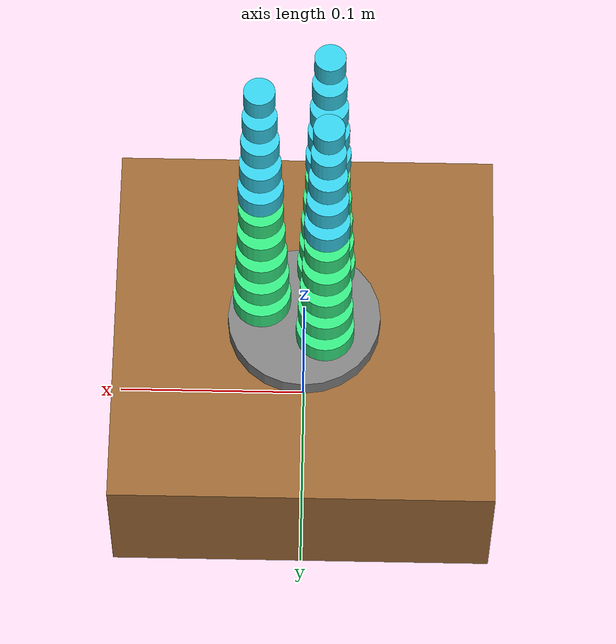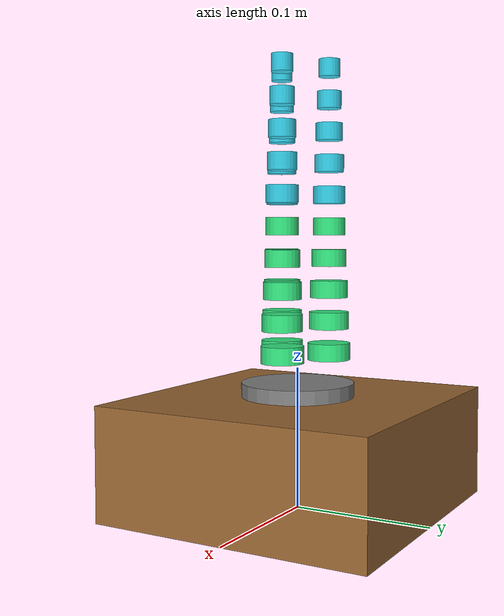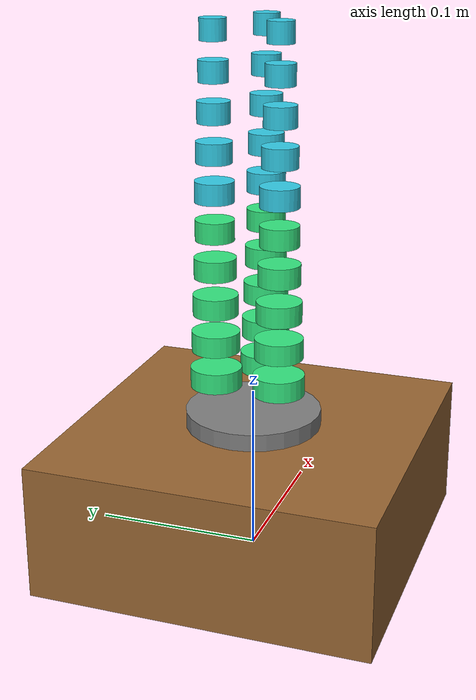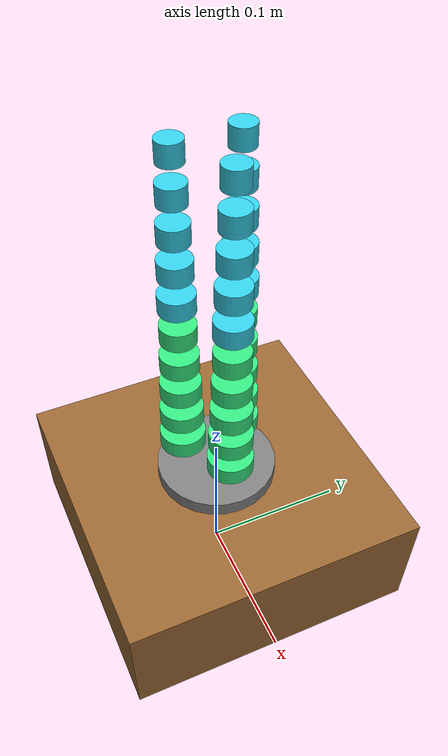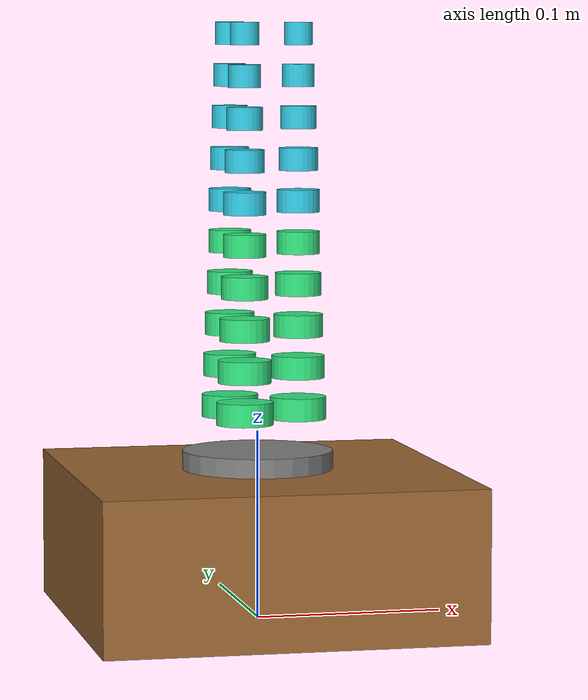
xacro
<?xml version="1.0"?>
<robot xmlns:xacro="http://www.ros.org/wiki/xacro" name="two_segment_gripper">

  <!-- Robot Dimensional Constants -->
  <xacro:property name="ground_offset" value="0.080"/>       <!-- 80mm - distance from ground to gripper base -->
  <xacro:property name="H" value="0.022"/>                   <!-- 22mm - equal H distance everywhere -->
  <xacro:property name="segment1_limit" value="0.2094"/>     <!-- ±12° for segment 1 -->
  <xacro:property name="segment2_limit" value="0.2094"/>     <!-- ±12° for segment 2 -->
  <xacro:property name="disc_height" value="0.012"/>         <!-- 12mm disc thickness -->

  <!-- Gripper Constants -->
  <xacro:property name="finger_base_radius" value="0.015"/>  <!-- 15mm radius = 30mm diameter at base -->
  <xacro:property name="finger_mid_radius" value="0.01125"/> <!-- 11.25mm radius at middle -->
  <xacro:property name="finger_tip_radius" value="0.0075"/>  <!-- 7.5mm radius = 15mm diameter at tip -->
  <xacro:property name="finger_offset" value="0.022"/>       <!-- 22mm from center -->

  <!-- Finger Segment Macro -->
  <xacro:macro name="finger_segment" params="finger_num segment_num parent_link is_actuated mimic_joint disc_radius_val color">

    <!-- Revolute Joint -->
    <joint name="finger${finger_num}_seg${segment_num}_joint" type="revolute">
      <parent link="${parent_link}"/>
      <child link="finger${finger_num}_seg${segment_num}_link"/>
      <origin xyz="0 0 0" rpy="0 0 0"/>
      <axis xyz="0 1 0"/>
      <!-- Segments 1-5 (level 1) use -1° to +12° -->
      <xacro:if value="${segment_num &lt;= 5}">
        <limit lower="-0.0175" upper="${segment1_limit}" effort="50" velocity="1.0"/>
      </xacro:if>
      <!-- Segments 6-10 (level 2) use -6° to +12° -->
      <xacro:if value="${segment_num &gt; 5}">
        <limit lower="-0.1047" upper="${segment2_limit}" effort="50" velocity="1.0"/>
      </xacro:if>
      <xacro:if value="${is_actuated}">
        <dynamics damping="0.5" friction="0.0"/>
      </xacro:if>
      <xacro:unless value="${is_actuated}">
        <mimic joint="${mimic_joint}" multiplier="1.0" offset="0.0"/>
        <dynamics damping="0.1" friction="0.0"/>
      </xacro:unless>
    </joint>

    <link name="finger${finger_num}_seg${segment_num}_link">
      <inertial>
        <origin xyz="0 0 0" rpy="0 0 0"/>
        <mass value="0.01"/>
        <inertia ixx="0.00001" ixy="0" ixz="0" iyy="0.00001" iyz="0" izz="0.00001"/>
      </inertial>
    </link>

    <!-- Fixed H distance to disc -->
    <joint name="finger${finger_num}_seg${segment_num}_fixed" type="fixed">
      <parent link="finger${finger_num}_seg${segment_num}_link"/>
      <child link="finger${finger_num}_seg${segment_num}_disc"/>
      <origin xyz="0 0 ${H}" rpy="0 0 0"/>
    </joint>

    <!-- Disc -->
    <link name="finger${finger_num}_seg${segment_num}_disc">
      <visual>
        <origin xyz="0 0 0" rpy="0 0 0"/>
        <geometry>
          <cylinder radius="${disc_radius_val}" length="${disc_height}"/>
        </geometry>
        <material name="finger_seg${segment_num}_mat">
          <color rgba="${color}"/>
        </material>
      </visual>
      <collision>
        <origin xyz="0 0 0" rpy="0 0 0"/>
        <geometry>
          <cylinder radius="${disc_radius_val}" length="${disc_height}"/>
        </geometry>
      </collision>
      <inertial>
        <origin xyz="0 0 0" rpy="0 0 0"/>
        <mass value="0.1"/>
        <inertia ixx="0.0001" ixy="0" ixz="0" iyy="0.0001" iyz="0" izz="0.0001"/>
      </inertial>
    </link>

  </xacro:macro>

  <!-- Base Link -->
  <link name="base_link">
    <visual>
      <origin xyz="0 0 ${ground_offset/2}" rpy="0 0 0"/>
      <geometry>
        <box size="0.2 0.2 ${ground_offset}"/>
      </geometry>
      <material name="brown">
        <color rgba="0.6 0.4 0.2 1.0"/>
      </material>
    </visual>
    <collision>
      <origin xyz="0 0 ${ground_offset/2}" rpy="0 0 0"/>
      <geometry>
        <box size="0.2 0.2 ${ground_offset}"/>
      </geometry>
    </collision>
    <inertial>
      <origin xyz="0 0 ${ground_offset/2}" rpy="0 0 0"/>
      <mass value="2.0"/>
      <inertia ixx="0.01" ixy="0" ixz="0" iyy="0.01" iyz="0" izz="0.01"/>
    </inertial>
  </link>

  <!-- Gripper Base -->
  <joint name="base_to_gripper" type="fixed">
    <parent link="base_link"/>
    <child link="gripper_base"/>
    <origin xyz="0 0 ${ground_offset}" rpy="0 0 0"/>
  </joint>

  <link name="gripper_base">
    <visual>
      <origin xyz="0 0 0.005" rpy="0 0 0"/>
      <geometry>
        <cylinder radius="0.04" length="0.01"/>
      </geometry>
      <material name="gray">
        <color rgba="0.5 0.5 0.5 1.0"/>
      </material>
    </visual>
    <inertial>
      <mass value="0.2"/>
      <inertia ixx="0.0001" ixy="0" ixz="0" iyy="0.0001" iyz="0" izz="0.0001"/>
    </inertial>
  </link>

  <!-- ===== FINGER 1 (at 0°) ===== -->
  <joint name="finger1_mount" type="fixed">
    <parent link="gripper_base"/>
    <child link="finger1_base"/>
    <origin xyz="${finger_offset} 0 0.01" rpy="0 0 0"/>
  </joint>
  <link name="finger1_base">
    <inertial>
      <mass value="0.01"/>
      <inertia ixx="0.00001" ixy="0" ixz="0" iyy="0.00001" iyz="0" izz="0.00001"/>
    </inertial>
  </link>

  <!-- Finger 1: Level 1 - 5 discs (all controlled by seg1_joint) GREEN -->
  <xacro:finger_segment finger_num="1" segment_num="1" parent_link="finger1_base" is_actuated="true" mimic_joint="" disc_radius_val="${finger_base_radius}" color="0.2 0.9 0.5 1.0"/>
  <xacro:finger_segment finger_num="1" segment_num="2" parent_link="finger1_seg1_disc" is_actuated="false" mimic_joint="finger1_seg1_joint" disc_radius_val="${finger_base_radius - 1*(finger_base_radius - finger_mid_radius)/4}" color="0.2 0.9 0.5 1.0"/>
  <xacro:finger_segment finger_num="1" segment_num="3" parent_link="finger1_seg2_disc" is_actuated="false" mimic_joint="finger1_seg1_joint" disc_radius_val="${finger_base_radius - 2*(finger_base_radius - finger_mid_radius)/4}" color="0.2 0.9 0.5 1.0"/>
  <xacro:finger_segment finger_num="1" segment_num="4" parent_link="finger1_seg3_disc" is_actuated="false" mimic_joint="finger1_seg1_joint" disc_radius_val="${finger_base_radius - 3*(finger_base_radius - finger_mid_radius)/4}" color="0.2 0.9 0.5 1.0"/>
  <xacro:finger_segment finger_num="1" segment_num="5" parent_link="finger1_seg4_disc" is_actuated="false" mimic_joint="finger1_seg1_joint" disc_radius_val="${finger_mid_radius}" color="0.2 0.9 0.5 1.0"/>

  <!-- Finger 1: Level 2 - 5 discs (all controlled by seg6_joint) CYAN -->
  <xacro:finger_segment finger_num="1" segment_num="6" parent_link="finger1_seg5_disc" is_actuated="true" mimic_joint="" disc_radius_val="${finger_mid_radius}" color="0.2 0.8 0.9 1.0"/>
  <xacro:finger_segment finger_num="1" segment_num="7" parent_link="finger1_seg6_disc" is_actuated="false" mimic_joint="finger1_seg6_joint" disc_radius_val="${finger_mid_radius - 1*(finger_mid_radius - finger_tip_radius)/4}" color="0.2 0.8 0.9 1.0"/>
  <xacro:finger_segment finger_num="1" segment_num="8" parent_link="finger1_seg7_disc" is_actuated="false" mimic_joint="finger1_seg6_joint" disc_radius_val="${finger_mid_radius - 2*(finger_mid_radius - finger_tip_radius)/4}" color="0.2 0.8 0.9 1.0"/>
  <xacro:finger_segment finger_num="1" segment_num="9" parent_link="finger1_seg8_disc" is_actuated="false" mimic_joint="finger1_seg6_joint" disc_radius_val="${finger_mid_radius - 3*(finger_mid_radius - finger_tip_radius)/4}" color="0.2 0.8 0.9 1.0"/>
  <xacro:finger_segment finger_num="1" segment_num="10" parent_link="finger1_seg9_disc" is_actuated="false" mimic_joint="finger1_seg6_joint" disc_radius_val="${finger_tip_radius}" color="0.2 0.8 0.9 1.0"/>

  <!-- ===== FINGER 2 (at 120°) ===== -->
  <joint name="finger2_mount" type="fixed">
    <parent link="gripper_base"/>
    <child link="finger2_base"/>
    <origin xyz="${finger_offset*cos(2.0944)} ${finger_offset*sin(2.0944)} 0.01" rpy="0 0 2.0944"/>
  </joint>
  <link name="finger2_base">
    <inertial>
      <mass value="0.01"/>
      <inertia ixx="0.00001" ixy="0" ixz="0" iyy="0.00001" iyz="0" izz="0.00001"/>
    </inertial>
  </link>

  <!-- Finger 2: Level 1 - 5 discs (mimic finger1 level 1) GREEN -->
  <xacro:finger_segment finger_num="2" segment_num="1" parent_link="finger2_base" is_actuated="false" mimic_joint="finger1_seg1_joint" disc_radius_val="${finger_base_radius}" color="0.2 0.9 0.5 1.0"/>
  <xacro:finger_segment finger_num="2" segment_num="2" parent_link="finger2_seg1_disc" is_actuated="false" mimic_joint="finger1_seg1_joint" disc_radius_val="${finger_base_radius - 1*(finger_base_radius - finger_mid_radius)/4}" color="0.2 0.9 0.5 1.0"/>
  <xacro:finger_segment finger_num="2" segment_num="3" parent_link="finger2_seg2_disc" is_actuated="false" mimic_joint="finger1_seg1_joint" disc_radius_val="${finger_base_radius - 2*(finger_base_radius - finger_mid_radius)/4}" color="0.2 0.9 0.5 1.0"/>
  <xacro:finger_segment finger_num="2" segment_num="4" parent_link="finger2_seg3_disc" is_actuated="false" mimic_joint="finger1_seg1_joint" disc_radius_val="${finger_base_radius - 3*(finger_base_radius - finger_mid_radius)/4}" color="0.2 0.9 0.5 1.0"/>
  <xacro:finger_segment finger_num="2" segment_num="5" parent_link="finger2_seg4_disc" is_actuated="false" mimic_joint="finger1_seg1_joint" disc_radius_val="${finger_mid_radius}" color="0.2 0.9 0.5 1.0"/>

  <!-- Finger 2: Level 2 - 5 discs (mimic finger1 level 2) CYAN -->
  <xacro:finger_segment finger_num="2" segment_num="6" parent_link="finger2_seg5_disc" is_actuated="false" mimic_joint="finger1_seg6_joint" disc_radius_val="${finger_mid_radius}" color="0.2 0.8 0.9 1.0"/>
  <xacro:finger_segment finger_num="2" segment_num="7" parent_link="finger2_seg6_disc" is_actuated="false" mimic_joint="finger1_seg6_joint" disc_radius_val="${finger_mid_radius - 1*(finger_mid_radius - finger_tip_radius)/4}" color="0.2 0.8 0.9 1.0"/>
  <xacro:finger_segment finger_num="2" segment_num="8" parent_link="finger2_seg7_disc" is_actuated="false" mimic_joint="finger1_seg6_joint" disc_radius_val="${finger_mid_radius - 2*(finger_mid_radius - finger_tip_radius)/4}" color="0.2 0.8 0.9 1.0"/>
  <xacro:finger_segment finger_num="2" segment_num="9" parent_link="finger2_seg8_disc" is_actuated="false" mimic_joint="finger1_seg6_joint" disc_radius_val="${finger_mid_radius - 3*(finger_mid_radius - finger_tip_radius)/4}" color="0.2 0.8 0.9 1.0"/>
  <xacro:finger_segment finger_num="2" segment_num="10" parent_link="finger2_seg9_disc" is_actuated="false" mimic_joint="finger1_seg6_joint" disc_radius_val="${finger_tip_radius}" color="0.2 0.8 0.9 1.0"/>

  <!-- ===== FINGER 3 (at 240°) ===== -->
  <joint name="finger3_mount" type="fixed">
    <parent link="gripper_base"/>
    <child link="finger3_base"/>
    <origin xyz="${finger_offset*cos(4.1888)} ${finger_offset*sin(4.1888)} 0.01" rpy="0 0 4.1888"/>
  </joint>
  <link name="finger3_base">
    <inertial>
      <mass value="0.01"/>
      <inertia ixx="0.00001" ixy="0" ixz="0" iyy="0.00001" iyz="0" izz="0.00001"/>
    </inertial>
  </link>

  <!-- Finger 3: Level 1 - 5 discs (mimic finger1 level 1) GREEN -->
  <xacro:finger_segment finger_num="3" segment_num="1" parent_link="finger3_base" is_actuated="false" mimic_joint="finger1_seg1_joint" disc_radius_val="${finger_base_radius}" color="0.2 0.9 0.5 1.0"/>
  <xacro:finger_segment finger_num="3" segment_num="2" parent_link="finger3_seg1_disc" is_actuated="false" mimic_joint="finger1_seg1_joint" disc_radius_val="${finger_base_radius - 1*(finger_base_radius - finger_mid_radius)/4}" color="0.2 0.9 0.5 1.0"/>
  <xacro:finger_segment finger_num="3" segment_num="3" parent_link="finger3_seg2_disc" is_actuated="false" mimic_joint="finger1_seg1_joint" disc_radius_val="${finger_base_radius - 2*(finger_base_radius - finger_mid_radius)/4}" color="0.2 0.9 0.5 1.0"/>
  <xacro:finger_segment finger_num="3" segment_num="4" parent_link="finger3_seg3_disc" is_actuated="false" mimic_joint="finger1_seg1_joint" disc_radius_val="${finger_base_radius - 3*(finger_base_radius - finger_mid_radius)/4}" color="0.2 0.9 0.5 1.0"/>
  <xacro:finger_segment finger_num="3" segment_num="5" parent_link="finger3_seg4_disc" is_actuated="false" mimic_joint="finger1_seg1_joint" disc_radius_val="${finger_mid_radius}" color="0.2 0.9 0.5 1.0"/>

  <!-- Finger 3: Level 2 - 5 discs (mimic finger1 level 2) CYAN -->
  <xacro:finger_segment finger_num="3" segment_num="6" parent_link="finger3_seg5_disc" is_actuated="false" mimic_joint="finger1_seg6_joint" disc_radius_val="${finger_mid_radius}" color="0.2 0.8 0.9 1.0"/>
  <xacro:finger_segment finger_num="3" segment_num="7" parent_link="finger3_seg6_disc" is_actuated="false" mimic_joint="finger1_seg6_joint" disc_radius_val="${finger_mid_radius - 1*(finger_mid_radius - finger_tip_radius)/4}" color="0.2 0.8 0.9 1.0"/>
  <xacro:finger_segment finger_num="3" segment_num="8" parent_link="finger3_seg7_disc" is_actuated="false" mimic_joint="finger1_seg6_joint" disc_radius_val="${finger_mid_radius - 2*(finger_mid_radius - finger_tip_radius)/4}" color="0.2 0.8 0.9 1.0"/>
  <xacro:finger_segment finger_num="3" segment_num="9" parent_link="finger3_seg8_disc" is_actuated="false" mimic_joint="finger1_seg6_joint" disc_radius_val="${finger_mid_radius - 3*(finger_mid_radius - finger_tip_radius)/4}" color="0.2 0.8 0.9 1.0"/>
  <xacro:finger_segment finger_num="3" segment_num="10" parent_link="finger3_seg9_disc" is_actuated="false" mimic_joint="finger1_seg6_joint" disc_radius_val="${finger_tip_radius}" color="0.2 0.8 0.9 1.0"/>

</robot>
